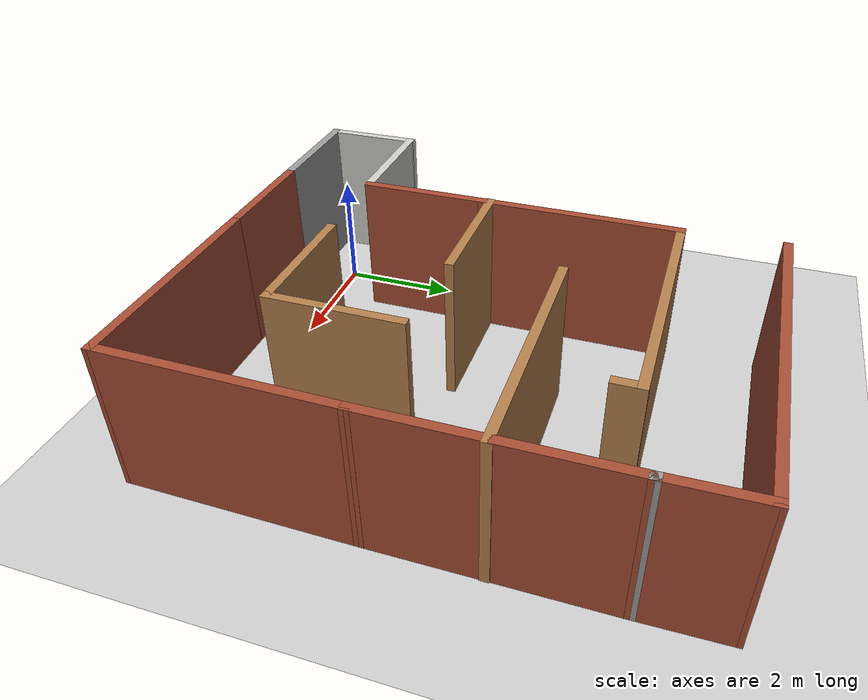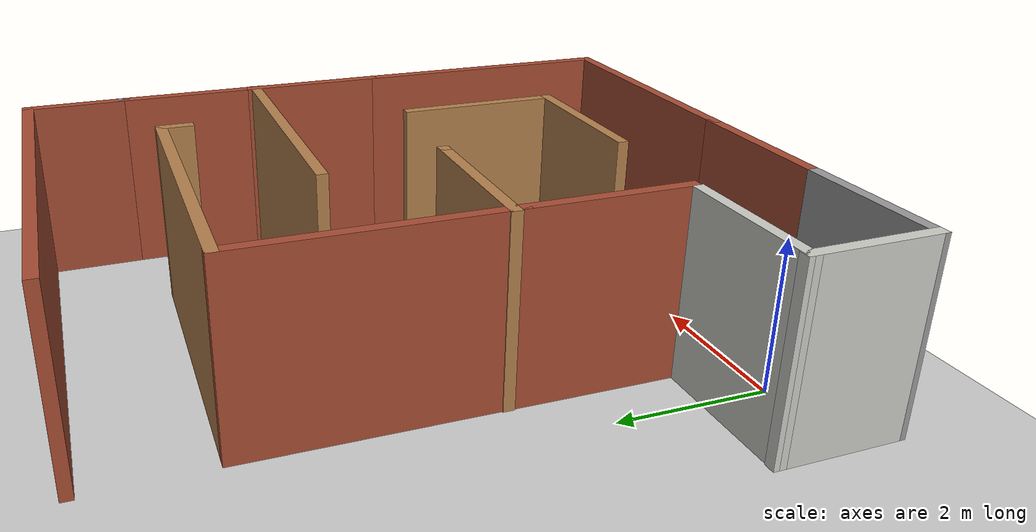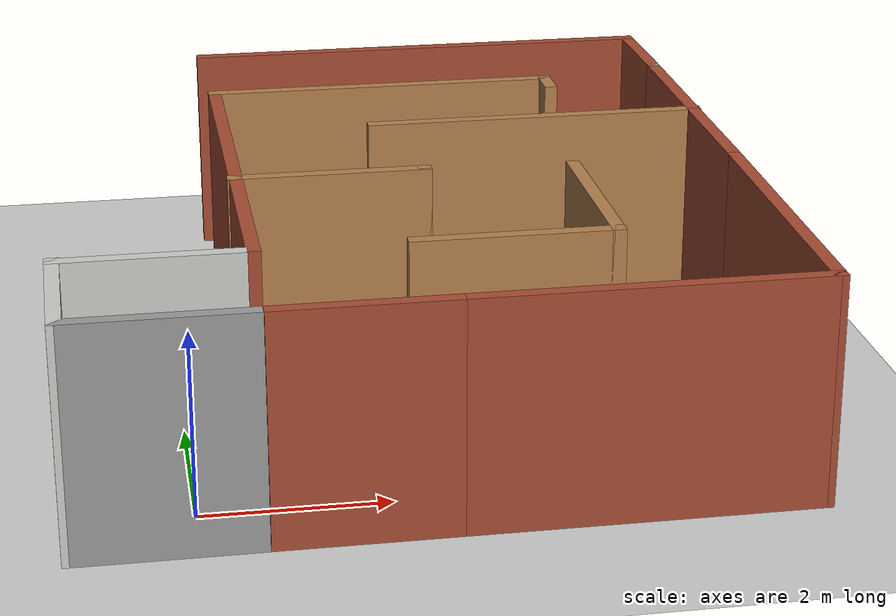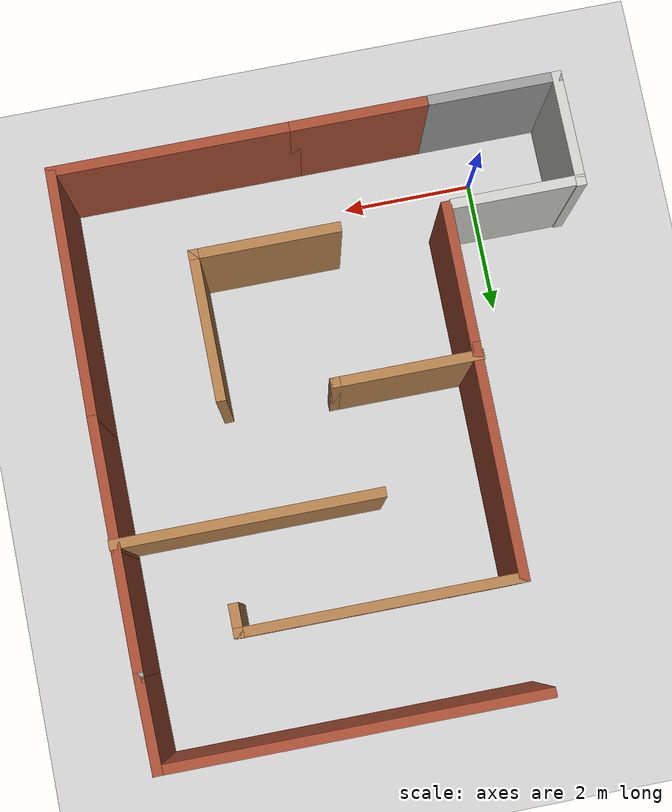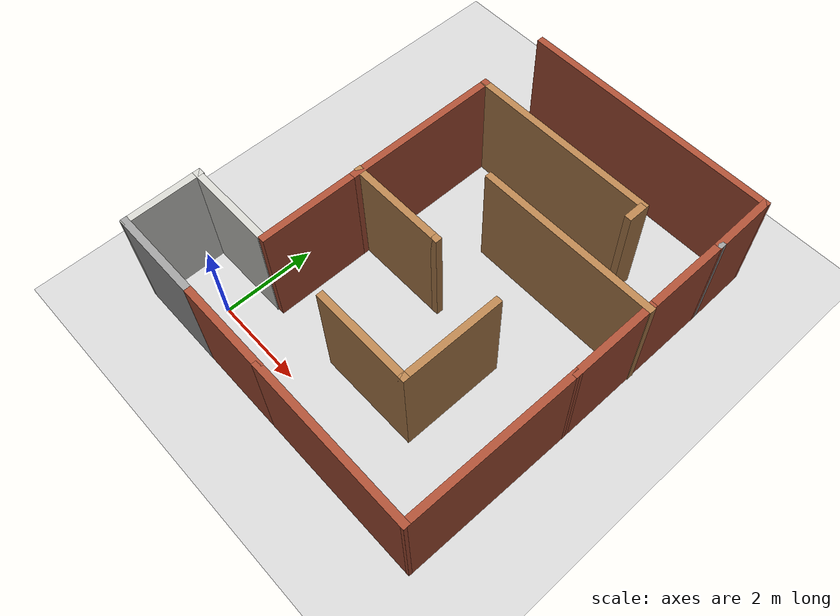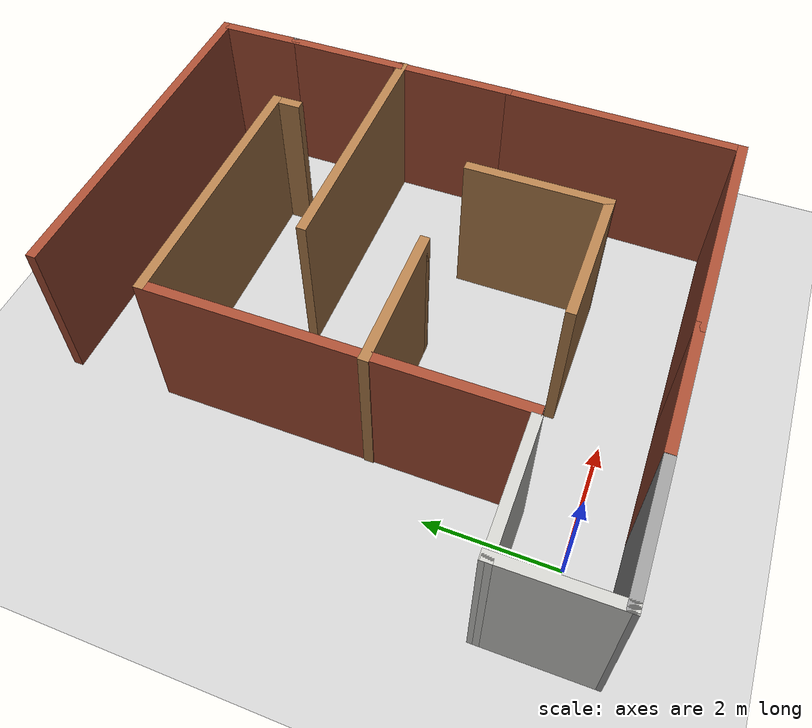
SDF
<sdf version="1.7">
 <world name="default">
  <light name="sun" type="directional">
   <pose>0 0 10 0 -0 0</pose>
   <diffuse>0.8 0.8 0.8 1</diffuse>
   <specular>0.2 0.2 0.2 1</specular>
   <attenuation>
    <range>1000</range>
    <constant>0.9</constant>
    <linear>0.01</linear>
    <quadratic>0.001</quadratic>
   </attenuation>
   <direction>-0.5 0.1 -0.9</direction>
   <spot><inner_angle>0</inner_angle><outer_angle>0</outer_angle><falloff>0</falloff></spot>
  </light>
  <model name="ground_plane">
   <static>1</static>
   <link name="link">
    <collision name="collision">
     <geometry><plane><normal>0 0 1</normal><size>100 100</size></plane></geometry>
     <surface><friction><ode><mu>100</mu><mu2>50</mu2></ode></friction></surface>
    </collision>
    <visual name="visual">
     <cast_shadows>0</cast_shadows>
     <geometry><plane><normal>0 0 1</normal><size>100 100</size></plane></geometry>
     <material>
      <script><uri>file://media/materials/scripts/gazebo.material</uri><name>Gazebo/Grey</name></script>
     </material>
    </visual>
   </link>
  </model>
  <gravity>0 0 -9.8</gravity>
  <magnetic_field>6e-06 2.3e-05 -4.2e-05</magnetic_field>
  <atmosphere type="adiabatic"/>
  <physics type="ode">
   <max_step_size>0.001</max_step_size>
   <real_time_factor>1</real_time_factor>
   <real_time_update_rate>1000</real_time_update_rate>
  </physics>
  <scene><ambient>0.4 0.4 0.4 1</ambient><background>0.7 0.7 0.7 1</background><shadows>1</shadows></scene>
  <audio><device>default</device></audio>
  <spherical_coordinates>
   <surface_model>EARTH_WGS84</surface_model>
   <latitude_deg>0</latitude_deg>
   <longitude_deg>0</longitude_deg>
   <elevation>0</elevation>
   <heading_deg>0</heading_deg>
  </spherical_coordinates>
  <model name="maze">
   <pose>3.19342 3.57902 0 0 -0 0</pose>
   <link name="Wall_11">
    <collision name="Wall_11_Collision">
     <geometry><box><size>2 0.15 2.5</size></box></geometry>
     <pose>0 0 1.25 0 -0 0</pose>
    </collision>
    <visual name="Wall_11_Visual">
     <pose>0 0 1.25 0 -0 0</pose>
     <geometry><box><size>2 0.15 2.5</size></box></geometry>
     <material>
      <script><uri>file://media/materials/scripts/gazebo.material</uri><name>Gazebo/Bricks</name></script>
      <ambient>1 1 1 1</ambient>
     </material>
     <meta><layer>0</layer></meta>
    </visual>
    <pose>3.10411 0.27256 0 0 -0 1.5708</pose>
   </link>
   <link name="Wall_12">
    <collision name="Wall_12_Collision">
     <geometry><box><size>2 0.15 2.5</size></box></geometry>
     <pose>0 0 1.25 0 -0 0</pose>
    </collision>
    <visual name="Wall_12_Visual">
     <pose>0 0 1.25 0 -0 0</pose>
     <geometry><box><size>2 0.15 2.5</size></box></geometry>
     <material>
      <script><uri>file://media/materials/scripts/gazebo.material</uri><name>Gazebo/Bricks</name></script>
      <ambient>1 1 1 1</ambient>
     </material>
     <meta><layer>0</layer></meta>
    </visual>
    <pose>3.10411 2.12256 0 0 -0 1.5708</pose>
   </link>
   <link name="Wall_13">
    <collision name="Wall_13_Collision">
     <geometry><box><size>0.15 0.15 2.5</size></box></geometry>
     <pose>0 0 1.25 0 -0 0</pose>
    </collision>
    <visual name="Wall_13_Visual">
     <pose>0 0 1.25 0 -0 0</pose>
     <geometry><box><size>0.15 0.15 2.5</size></box></geometry>
     <material>
      <script><uri>file://media/materials/scripts/gazebo.material</uri><name>Gazebo/Grey</name></script>
      <ambient>1 1 1 1</ambient>
     </material>
     <meta><layer>0</layer></meta>
    </visual>
    <pose>3.10411 3.04756 0 0 -0 0</pose>
   </link>
   <link name="Wall_14">
    <collision name="Wall_14_Collision">
     <geometry><box><size>1.45469 0.15 2.5</size></box></geometry>
     <pose>0 0 1.25 0 -0 0</pose>
    </collision>
    <visual name="Wall_14_Visual">
     <pose>0 0 1.25 0 -0 0</pose>
     <geometry><box><size>1.45469 0.15 2.5</size></box></geometry>
     <material>
      <script><uri>file://media/materials/scripts/gazebo.material</uri><name>Gazebo/Bricks</name></script>
      <ambient>1 1 1 1</ambient>
     </material>
     <meta><layer>0</layer></meta>
    </visual>
    <pose>3.09425 3.69983 0 0 -0 1.58591</pose>
   </link>
   <link name="Wall_19">
    <collision name="Wall_19_Collision">
     <geometry><box><size>2.25 0.15 2.5</size></box></geometry>
     <pose>0 0 1.25 0 -0 0</pose>
    </collision>
    <visual name="Wall_19_Visual">
     <pose>0 0 1.25 0 -0 0</pose>
     <geometry><box><size>2.25 0.15 2.5</size></box></geometry>
     <material>
      <script><uri>file://media/materials/scripts/gazebo.material</uri><name>Gazebo/Bricks</name></script>
      <ambient>1 1 1 1</ambient>
     </material>
     <meta><layer>0</layer></meta>
    </visual>
    <pose>-2.4795 -1.70162 0 0 -0 -1.5708</pose>
   </link>
   <link name="Wall_21">
    <collision name="Wall_21_Collision">
     <geometry><box><size>2.25 0.15 2.5</size></box></geometry>
     <pose>0 0 1.25 0 -0 0</pose>
    </collision>
    <visual name="Wall_21_Visual">
     <pose>0 0 1.25 0 -0 0</pose>
     <geometry><box><size>2.25 0.15 2.5</size></box></geometry>
     <material>
      <script><uri>file://media/materials/scripts/gazebo.material</uri><name>Gazebo/Wood</name></script>
      <ambient>1 1 1 1</ambient>
     </material>
     <meta><layer>0</layer></meta>
    </visual>
    <pose>-1.44658 -0.529258 0 0 -0 0</pose>
   </link>
   <link name="Wall_22">
    <collision name="Wall_22_Collision">
     <geometry><box><size>0.15 0.15 2.5</size></box></geometry>
     <pose>0 0 1.25 0 -0 0</pose>
    </collision>
    <visual name="Wall_22_Visual">
     <pose>0 0 1.25 0 -0 0</pose>
     <geometry><box><size>0.15 0.15 2.5</size></box></geometry>
     <material>
      <script><uri>file://media/materials/scripts/gazebo.material</uri><name>Gazebo/Wood</name></script>
      <ambient>1 1 1 1</ambient>
     </material>
     <meta><layer>0</layer></meta>
    </visual>
    <pose>-0.396583 -0.529258 0 0 -0 0</pose>
   </link>
   <link name="Wall_26">
    <collision name="Wall_26_Collision">
     <geometry><box><size>3.5 0.15 2.5</size></box></geometry>
     <pose>0 0 1.25 0 -0 0</pose>
    </collision>
    <visual name="Wall_26_Visual">
     <pose>0 0 1.25 0 -0 0</pose>
     <geometry><box><size>3.5 0.15 2.5</size></box></geometry>
     <material>
      <script><uri>file://media/materials/scripts/gazebo.material</uri><name>Gazebo/Bricks</name></script>
      <ambient>1 1 1 1</ambient>
     </material>
     <meta><layer>0</layer></meta>
    </visual>
    <pose>-2.4795 1.02338 0 0 -0 1.5708</pose>
   </link>
   <link name="Wall_28">
    <collision name="Wall_28_Collision">
     <geometry><box><size>4 0.15 2.5</size></box></geometry>
     <pose>0 0 1.25 0 -0 0</pose>
    </collision>
    <visual name="Wall_28_Visual">
     <pose>0 0 1.25 0 -0 0</pose>
     <geometry><box><size>4 0.15 2.5</size></box></geometry>
     <material>
      <script><uri>file://media/materials/scripts/gazebo.material</uri><name>Gazebo/Wood</name></script>
      <ambient>1 1 1 1</ambient>
     </material>
     <meta><layer>0</layer></meta>
    </visual>
    <pose>1.19342 1.14199 0 0 -0 3.14159</pose>
   </link>
   <link name="Wall_31">
    <collision name="Wall_31_Collision">
     <geometry><box><size>4.25 0.15 2.5</size></box></geometry>
     <pose>0 0 1.25 0 -0 0</pose>
    </collision>
    <visual name="Wall_31_Visual">
     <pose>0 0 1.25 0 -0 0</pose>
     <geometry><box><size>4.25 0.15 2.5</size></box></geometry>
     <material>
      <script><uri>file://media/materials/scripts/gazebo.material</uri><name>Gazebo/Wood</name></script>
      <ambient>1 1 1 1</ambient>
     </material>
     <meta><layer>0</layer></meta>
    </visual>
    <pose>-0.429501 2.69838 0 0 -0 0</pose>
   </link>
   <link name="Wall_32">
    <collision name="Wall_32_Collision">
     <geometry><box><size>0.5 0.15 2.5</size></box></geometry>
     <pose>0 0 1.25 0 -0 0</pose>
    </collision>
    <visual name="Wall_32_Visual">
     <pose>0 0 1.25 0 -0 0</pose>
     <geometry><box><size>0.5 0.15 2.5</size></box></geometry>
     <material>
      <script><uri>file://media/materials/scripts/gazebo.material</uri><name>Gazebo/Wood</name></script>
      <ambient>1 1 1 1</ambient>
     </material>
     <meta><layer>0</layer></meta>
    </visual>
    <pose>1.6205 2.52338 0 0 -0 -1.5708</pose>
   </link>
   <link name="Wall_34">
    <collision name="Wall_34_Collision">
     <geometry><box><size>5.75 0.15 2.5</size></box></geometry>
     <pose>0 0 1.25 0 -0 0</pose>
    </collision>
    <visual name="Wall_34_Visual">
     <pose>0 0 1.25 0 -0 0</pose>
     <geometry><box><size>5.75 0.15 2.5</size></box></geometry>
     <material>
      <script><uri>file://media/materials/scripts/gazebo.material</uri><name>Gazebo/Bricks</name></script>
      <ambient>1 1 1 1</ambient>
     </material>
     <meta><layer>0</layer></meta>
    </visual>
    <pose>0.284398 4.3521 0 0 -0 3.14159</pose>
   </link>
   <link name="Wall_38">
    <collision name="Wall_38_Collision">
     <geometry><box><size>3.75 0.15 2.5</size></box></geometry>
     <pose>0 0 1.25 0 -0 0</pose>
    </collision>
    <visual name="Wall_38_Visual">
     <pose>0 0 1.25 0 -0 0</pose>
     <geometry><box><size>3.75 0.15 2.5</size></box></geometry>
     <material>
      <script><uri>file://media/materials/scripts/gazebo.material</uri><name>Gazebo/Bricks</name></script>
      <ambient>1 1 1 1</ambient>
     </material>
     <meta><layer>0</layer></meta>
    </visual>
    <pose>1.26529 -4.35244 0 0 -0 0</pose>
   </link>
   <link name="Wall_39">
    <collision name="Wall_39_Collision">
     <geometry><box><size>3.8502 0.15 2.5</size></box></geometry>
     <pose>0 0 1.25 0 -0 0</pose>
    </collision>
    <visual name="Wall_39_Visual">
     <pose>0 0 1.25 0 -0 0</pose>
     <geometry><box><size>3.8502 0.15 2.5</size></box></geometry>
     <material>
      <script><uri>file://media/materials/scripts/gazebo.material</uri><name>Gazebo/Bricks</name></script>
      <ambient>1 1 1 1</ambient>
     </material>
     <meta><layer>0</layer></meta>
    </visual>
    <pose>3.0847 -2.50244 0 0 -0 1.56031</pose>
   </link>
   <link name="Wall_6">
    <collision name="Wall_6_Collision">
     <geometry><box><size>2.06118 0.15 2.5</size></box></geometry>
     <pose>0 0 1.25 0 -0 0</pose>
    </collision>
    <visual name="Wall_6_Visual">
     <pose>0 0 1.25 0 -0 0</pose>
     <geometry><box><size>2.06118 0.15 2.5</size></box></geometry>
     <material>
      <script><uri>file://media/materials/scripts/gazebo.material</uri><name>Gazebo/Bricks</name></script>
      <ambient>1 1 1 1</ambient>
     </material>
     <meta><layer>0</layer></meta>
    </visual>
    <pose>-1.4903 -4.35244 0 0 -0 0</pose>
   </link>
   <link name="Wall_8">
    <collision name="Wall_8_Collision">
     <geometry><box><size>2.25 0.15 2.5</size></box></geometry>
     <pose>0 0 1.25 0 -0 0</pose>
    </collision>
    <visual name="Wall_8_Visual">
     <pose>0 0 1.25 0 -0 0</pose>
     <geometry><box><size>2.25 0.15 2.5</size></box></geometry>
     <material>
      <script><uri>file://media/materials/scripts/gazebo.material</uri><name>Gazebo/Wood</name></script>
      <ambient>1 1 1 1</ambient>
     </material>
     <meta><layer>0</layer></meta>
    </visual>
    <pose>0.204111 -2.75244 0 0 -0 0</pose>
   </link>
   <link name="Wall_9">
    <collision name="Wall_9_Collision">
     <geometry><box><size>2.25 0.15 2.5</size></box></geometry>
     <pose>0 0 1.25 0 -0 0</pose>
    </collision>
    <visual name="Wall_9_Visual">
     <pose>0 0 1.25 0 -0 0</pose>
     <geometry><box><size>2.25 0.15 2.5</size></box></geometry>
     <material>
      <script><uri>file://media/materials/scripts/gazebo.material</uri><name>Gazebo/Wood</name></script>
      <ambient>1 1 1 1</ambient>
     </material>
     <meta><layer>0</layer></meta>
    </visual>
    <pose>1.25411 -1.70244 0 0 -0 1.5708</pose>
   </link>
   <static>1</static>
  </model>
  <model name="maze1">
   <pose>-0.338644 0.023906 0 0 -0 0</pose>
   <link name="Wall_41">
    <collision name="Wall_41_Collision">
     <geometry><box><size>2 0.15 2.5</size></box></geometry>
     <pose>0 0 1.25 0 -0 0</pose>
    </collision>
    <visual name="Wall_41_Visual">
     <pose>0 0 1.25 0 -0 0</pose>
     <geometry><box><size>2 0.15 2.5</size></box></geometry>
     <material>
      <script><uri>file://media/materials/scripts/gazebo.material</uri><name>Gazebo/Grey</name></script>
      <ambient>1 1 1 1</ambient>
     </material>
     <meta><layer>0</layer></meta>
    </visual>
    <pose>0.00796 -0.799056 0 0 -0 3.14159</pose>
   </link>
   <link name="Wall_44">
    <collision name="Wall_44_Collision">
     <geometry><box><size>1.74818 0.15 2.5</size></box></geometry>
     <pose>0 0 1.25 0 -0 0</pose>
    </collision>
    <visual name="Wall_44_Visual">
     <pose>0 0 1.25 0 -0 0</pose>
     <geometry><box><size>1.74818 0.15 2.5</size></box></geometry>
     <material>
      <script><uri>file://media/materials/scripts/gazebo.material</uri><name>Gazebo/CeilingTiled</name></script>
      <ambient>1 1 1 1</ambient>
     </material>
     <meta><layer>0</layer></meta>
    </visual>
    <pose>-0.924645 0 0 0 -0 1.58031</pose>
   </link>
   <link name="Wall_45">
    <collision name="Wall_45_Collision">
     <geometry><box><size>2 0.15 2.5</size></box></geometry>
     <pose>0 0 1.25 0 -0 0</pose>
    </collision>
    <visual name="Wall_45_Visual">
     <pose>0 0 1.25 0 -0 0</pose>
     <geometry><box><size>2 0.15 2.5</size></box></geometry>
     <material>
      <script><uri>file://media/materials/scripts/gazebo.material</uri><name>Gazebo/CeilingTiled</name></script>
      <ambient>1 1 1 1</ambient>
     </material>
     <meta><layer>0</layer></meta>
    </visual>
    <pose>-0.007249 0.783847 0 0 -0 0</pose>
   </link>
   <static>1</static>
  </model>
 </world>
</sdf>
